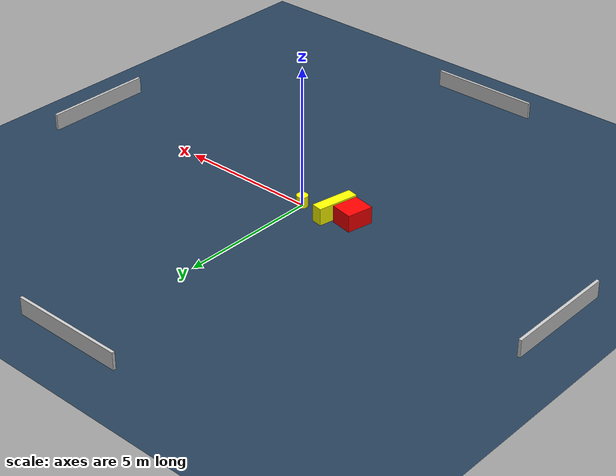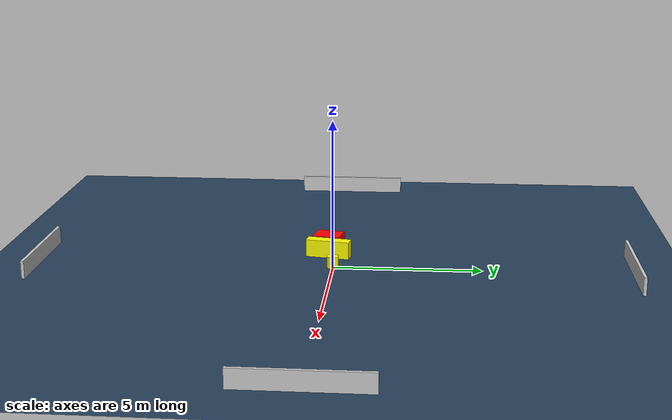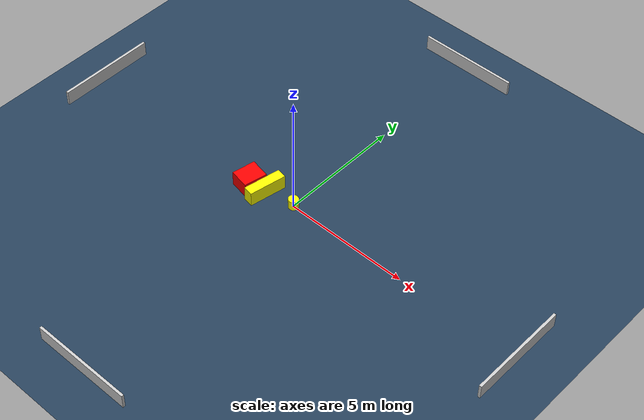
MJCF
<?xml version="1.0" ?>
<mujoco model="generated_environment">
  <option timestep="0.01" integrator="RK4" cone="elliptic"/>
  <default>
    <geom density="1"/>
  </default>
  <asset>
    <texture builtin="gradient" height="3072" name="skybox" rgb1="0.3 0.5 0.7" rgb2="0 0 0" type="skybox" width="512"/>
    <texture builtin="checker" height="300" name="groundplane" rgb1="0.2 0.3 0.4" rgb2="0.1 0.2 0.3" type="2d" width="300"/>
    <material name="groundplane" reflectance="0.2" texrepeat="5 5" texture="groundplane"/>
  </asset>
  <worldbody>
    <light dir="0 0 -1" directional="true" pos="0 0 1.5"/>
    <geom condim="3" friction="0.5 0.005 0.001" material="groundplane" name="floor" pos="0 0 0" size="0 0 0.05" type="plane"/>
    <body name="walls">
      <geom name="wall_1" condim="4" pos="-10.0 0.0 0.3" rgba="0.800000011920929 0.800000011920929 0.800000011920929 1.0" size="0.05 2.0 0.3" type="box"/>
      <geom name="wall_2" condim="4" pos="10.0 0.0 0.3" rgba="0.800000011920929 0.800000011920929 0.800000011920929 1.0" size="0.05 2.0 0.3" type="box"/>
      <geom name="wall_3" condim="4" pos="0.0 -10.0 0.3" rgba="0.800000011920929 0.800000011920929 0.800000011920929 1.0" size="2.0 0.05 0.3" type="box"/>
      <geom name="wall_4" condim="4" pos="0.0 10.0 0.3" rgba="0.800000011920929 0.800000011920929 0.800000011920929 1.0" size="2.0 0.05 0.3" type="box"/>
    </body>
    <body name="robot">
      <joint name="joint_x" type="slide" pos="0 0 0" axis="1 0 0"/>
      <joint name="joint_y" type="slide" pos="0 0 0" axis="0 1 0"/>
      <geom name="robot" type="cylinder" pos="0.0 0.0 0.2" size="0.2 0.2 0.0" mass="5.0" friction="1.0 0.005 0.0001" condim="4" rgba="1.0 1.0 0.0 1.0"/>
    </body>
    <body name="obstacle_1_movable">
      <geom name="obstacle_1_movable" condim="4" pos="-1.196500991711083 -0.2346765922235553 0.3" euler="0 0 169.40791513365377" friction="0.0 0.005 0.001" rgba="1.0 1.0 0.0 1.0" size="0.200357306814207 0.7526622073191367 0.3" type="box" mass="0.1"/>
      <joint type="free"/>
    </body>
    <body name="obstacle_2_static">
      <geom name="obstacle_2_static" condim="4" pos="-1.8967446753298083 -0.2991012845092327 0.3" euler="0 0 78.95401795668364" friction="0.0 0.005 0.001" rgba="1.0 0.0 0.0 1.0" size="0.47238328735602114 0.3983347572979725 0.3" type="box"/>
    </body>
  </worldbody>
  <actuator>
    <motor name="actuator_x" joint="joint_x" gear="1" ctrlrange="-1 1"/>
    <motor name="actuator_y" joint="joint_y" gear="1" ctrlrange="-1 1"/>
  </actuator>
</mujoco>
